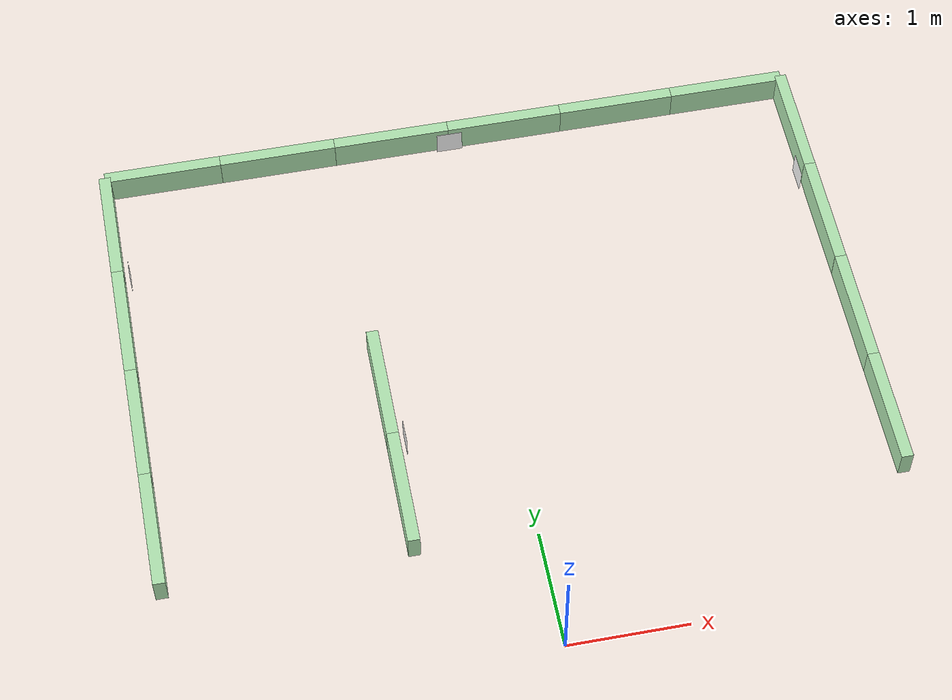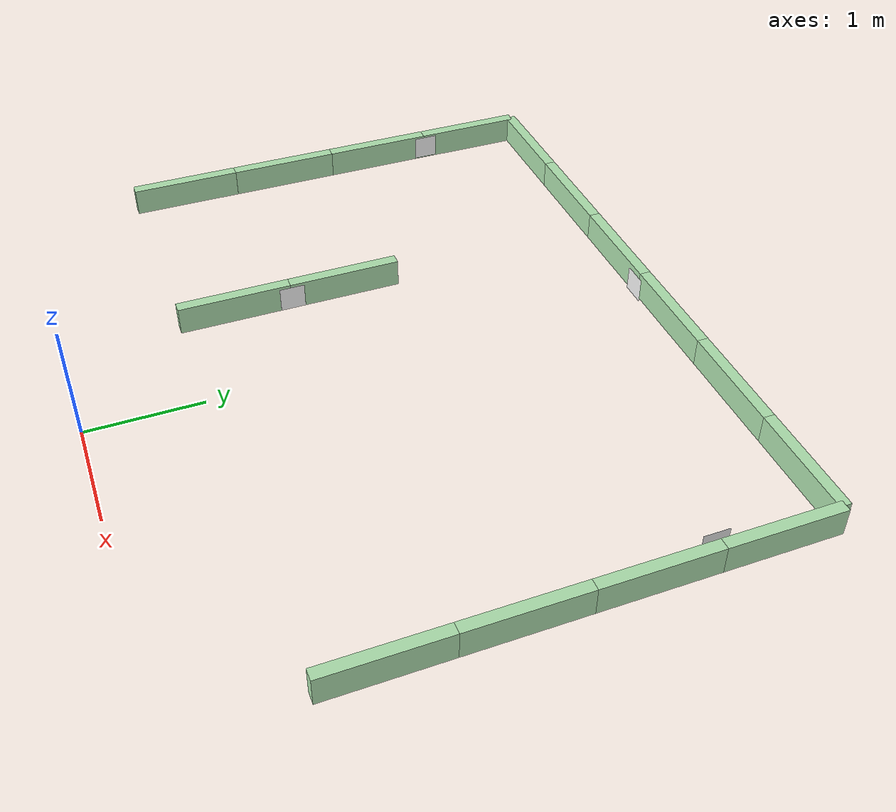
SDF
<sdf version="1.6">
 <world name="default">
  <model name="wall_100_25h_1_clone_9_clone_clone_8">
   <link name="link">
    <inertial>
     <mass>1</mass>
     <inertia>
      <ixx>0.166667</ixx>
      <ixy>0</ixy>
      <ixz>0</ixz>
      <iyy>0.166667</iyy>
      <iyz>0</iyz>
      <izz>0.166667</izz>
     </inertia>
    </inertial>
    <visual name="visual">
     <geometry><box><size>1 0.1 0.25</size></box></geometry>
     <material>
      <script><name>Gazebo/Grey</name><uri>file://media/materials/scripts/gazebo.material</uri></script>
      <ambient>0.3 0.5 0.3 1</ambient>
      <diffuse>0.7 0.9 0.7 1</diffuse>
      <specular>0.01 0.02 0.01 1</specular>
      <emissive>0 0 0 1</emissive>
      <lighting>1</lighting>
      <shader type="vertex"><normal_map>__default__</normal_map></shader>
     </material>
    </visual>
    <collision name="collision">
     <geometry><box><size>1 0.1 0.25</size></box></geometry>
     <surface>
      <friction>
       <ode><mu>1</mu><mu2>1</mu2><fdir1>0 0 0</fdir1><slip1>0</slip1><slip2>0</slip2></ode>
       <torsional>
        <coefficient>1</coefficient>
        <patch_radius>0</patch_radius>
        <surface_radius>0</surface_radius>
        <use_patch_radius>1</use_patch_radius>
        <ode><slip>0</slip></ode>
       </torsional>
      </friction>
      <bounce><restitution_coefficient>0</restitution_coefficient><threshold>1e+06</threshold></bounce>
      <contact>
       <collide_without_contact>0</collide_without_contact>
       <collide_without_contact_bitmask>1</collide_without_contact_bitmask>
       <collide_bitmask>1</collide_bitmask>
       <ode>
        <soft_cfm>0</soft_cfm>
        <soft_erp>0.2</soft_erp>
        <kp>1e+13</kp>
        <kd>1</kd>
        <max_vel>0.01</max_vel>
        <min_depth>0</min_depth>
       </ode>
       <bullet>
        <split_impulse>1</split_impulse>
        <split_impulse_penetration_threshold>-0.01</split_impulse_penetration_threshold>
        <soft_cfm>0</soft_cfm>
        <soft_erp>0.2</soft_erp>
        <kp>1e+13</kp>
        <kd>1</kd>
       </bullet>
      </contact>
     </surface>
    </collision>
   </link>
   <static>1</static>
   <pose>-1 1.5 0.125 0 0.000404 -1.57111</pose>
  </model>
  <model name="wall_100_25h_1_clone_9_clone_clone_9">
   <link name="link">
    <inertial>
     <mass>1</mass>
     <inertia>
      <ixx>0.166667</ixx>
      <ixy>0</ixy>
      <ixz>0</ixz>
      <iyy>0.166667</iyy>
      <iyz>0</iyz>
      <izz>0.166667</izz>
     </inertia>
    </inertial>
    <visual name="visual">
     <geometry><box><size>1 0.1 0.25</size></box></geometry>
     <material>
      <script><name>Gazebo/Grey</name><uri>file://media/materials/scripts/gazebo.material</uri></script>
      <ambient>0.3 0.5 0.3 1</ambient>
      <diffuse>0.7 0.9 0.7 1</diffuse>
      <specular>0.01 0.02 0.01 1</specular>
      <emissive>0 0 0 1</emissive>
      <lighting>1</lighting>
      <shader type="vertex"><normal_map>__default__</normal_map></shader>
     </material>
    </visual>
    <collision name="collision">
     <geometry><box><size>1 0.1 0.25</size></box></geometry>
     <surface>
      <friction>
       <ode><mu>1</mu><mu2>1</mu2><fdir1>0 0 0</fdir1><slip1>0</slip1><slip2>0</slip2></ode>
       <torsional>
        <coefficient>1</coefficient>
        <patch_radius>0</patch_radius>
        <surface_radius>0</surface_radius>
        <use_patch_radius>1</use_patch_radius>
        <ode><slip>0</slip></ode>
       </torsional>
      </friction>
      <bounce><restitution_coefficient>0</restitution_coefficient><threshold>1e+06</threshold></bounce>
      <contact>
       <collide_without_contact>0</collide_without_contact>
       <collide_without_contact_bitmask>1</collide_without_contact_bitmask>
       <collide_bitmask>1</collide_bitmask>
       <ode>
        <soft_cfm>0</soft_cfm>
        <soft_erp>0.2</soft_erp>
        <kp>1e+13</kp>
        <kd>1</kd>
        <max_vel>0.01</max_vel>
        <min_depth>0</min_depth>
       </ode>
       <bullet>
        <split_impulse>1</split_impulse>
        <split_impulse_penetration_threshold>-0.01</split_impulse_penetration_threshold>
        <soft_cfm>0</soft_cfm>
        <soft_erp>0.2</soft_erp>
        <kp>1e+13</kp>
        <kd>1</kd>
       </bullet>
      </contact>
     </surface>
    </collision>
   </link>
   <static>1</static>
   <pose>-1 2.5 0.125 0 0.000404 -1.57111</pose>
  </model>
  <model name="wall_100_25h_1_clone_9_clone_clone_12">
   <link name="link">
    <inertial>
     <mass>1</mass>
     <inertia>
      <ixx>0.166667</ixx>
      <ixy>0</ixy>
      <ixz>0</ixz>
      <iyy>0.166667</iyy>
      <iyz>0</iyz>
      <izz>0.166667</izz>
     </inertia>
    </inertial>
    <visual name="visual">
     <geometry><box><size>1 0.1 0.25</size></box></geometry>
     <material>
      <script><name>Gazebo/Grey</name><uri>file://media/materials/scripts/gazebo.material</uri></script>
      <ambient>0.3 0.5 0.3 1</ambient>
      <diffuse>0.7 0.9 0.7 1</diffuse>
      <specular>0.01 0.02 0.01 1</specular>
      <emissive>0 0 0 1</emissive>
      <lighting>1</lighting>
      <shader type="vertex"><normal_map>__default__</normal_map></shader>
     </material>
    </visual>
    <collision name="collision">
     <geometry><box><size>1 0.1 0.25</size></box></geometry>
     <surface>
      <friction>
       <ode><mu>1</mu><mu2>1</mu2><fdir1>0 0 0</fdir1><slip1>0</slip1><slip2>0</slip2></ode>
       <torsional>
        <coefficient>1</coefficient>
        <patch_radius>0</patch_radius>
        <surface_radius>0</surface_radius>
        <use_patch_radius>1</use_patch_radius>
        <ode><slip>0</slip></ode>
       </torsional>
      </friction>
      <bounce><restitution_coefficient>0</restitution_coefficient><threshold>1e+06</threshold></bounce>
      <contact>
       <collide_without_contact>0</collide_without_contact>
       <collide_without_contact_bitmask>1</collide_without_contact_bitmask>
       <collide_bitmask>1</collide_bitmask>
       <ode>
        <soft_cfm>0</soft_cfm>
        <soft_erp>0.2</soft_erp>
        <kp>1e+13</kp>
        <kd>1</kd>
        <max_vel>0.01</max_vel>
        <min_depth>0</min_depth>
       </ode>
       <bullet>
        <split_impulse>1</split_impulse>
        <split_impulse_penetration_threshold>-0.01</split_impulse_penetration_threshold>
        <soft_cfm>0</soft_cfm>
        <soft_erp>0.2</soft_erp>
        <kp>1e+13</kp>
        <kd>1</kd>
       </bullet>
      </contact>
     </surface>
    </collision>
   </link>
   <static>1</static>
   <pose>-3 1.5 0.125 0 0.000404 -1.57111</pose>
  </model>
  <model name="wall_100_25h_1_clone_9_clone_clone_13">
   <link name="link">
    <inertial>
     <mass>1</mass>
     <inertia>
      <ixx>0.166667</ixx>
      <ixy>0</ixy>
      <ixz>0</ixz>
      <iyy>0.166667</iyy>
      <iyz>0</iyz>
      <izz>0.166667</izz>
     </inertia>
    </inertial>
    <visual name="visual">
     <geometry><box><size>1 0.1 0.25</size></box></geometry>
     <material>
      <script><name>Gazebo/Grey</name><uri>file://media/materials/scripts/gazebo.material</uri></script>
      <ambient>0.3 0.5 0.3 1</ambient>
      <diffuse>0.7 0.9 0.7 1</diffuse>
      <specular>0.01 0.02 0.01 1</specular>
      <emissive>0 0 0 1</emissive>
      <lighting>1</lighting>
      <shader type="vertex"><normal_map>__default__</normal_map></shader>
     </material>
    </visual>
    <collision name="collision">
     <geometry><box><size>1 0.1 0.25</size></box></geometry>
     <surface>
      <friction>
       <ode><mu>1</mu><mu2>1</mu2><fdir1>0 0 0</fdir1><slip1>0</slip1><slip2>0</slip2></ode>
       <torsional>
        <coefficient>1</coefficient>
        <patch_radius>0</patch_radius>
        <surface_radius>0</surface_radius>
        <use_patch_radius>1</use_patch_radius>
        <ode><slip>0</slip></ode>
       </torsional>
      </friction>
      <bounce><restitution_coefficient>0</restitution_coefficient><threshold>1e+06</threshold></bounce>
      <contact>
       <collide_without_contact>0</collide_without_contact>
       <collide_without_contact_bitmask>1</collide_without_contact_bitmask>
       <collide_bitmask>1</collide_bitmask>
       <ode>
        <soft_cfm>0</soft_cfm>
        <soft_erp>0.2</soft_erp>
        <kp>1e+13</kp>
        <kd>1</kd>
        <max_vel>0.01</max_vel>
        <min_depth>0</min_depth>
       </ode>
       <bullet>
        <split_impulse>1</split_impulse>
        <split_impulse_penetration_threshold>-0.01</split_impulse_penetration_threshold>
        <soft_cfm>0</soft_cfm>
        <soft_erp>0.2</soft_erp>
        <kp>1e+13</kp>
        <kd>1</kd>
       </bullet>
      </contact>
     </surface>
    </collision>
   </link>
   <static>1</static>
   <pose>-3 2.5 0.125 0 0.000404 -1.57111</pose>
  </model>
  <model name="wall_100_25h_1_clone_9_clone_clone_14">
   <link name="link">
    <inertial>
     <mass>1</mass>
     <inertia>
      <ixx>0.166667</ixx>
      <ixy>0</ixy>
      <ixz>0</ixz>
      <iyy>0.166667</iyy>
      <iyz>0</iyz>
      <izz>0.166667</izz>
     </inertia>
    </inertial>
    <visual name="visual">
     <geometry><box><size>1 0.1 0.25</size></box></geometry>
     <material>
      <script><name>Gazebo/Grey</name><uri>file://media/materials/scripts/gazebo.material</uri></script>
      <ambient>0.3 0.5 0.3 1</ambient>
      <diffuse>0.7 0.9 0.7 1</diffuse>
      <specular>0.01 0.02 0.01 1</specular>
      <emissive>0 0 0 1</emissive>
      <lighting>1</lighting>
      <shader type="vertex"><normal_map>__default__</normal_map></shader>
     </material>
    </visual>
    <collision name="collision">
     <geometry><box><size>1 0.1 0.25</size></box></geometry>
     <surface>
      <friction>
       <ode><mu>1</mu><mu2>1</mu2><fdir1>0 0 0</fdir1><slip1>0</slip1><slip2>0</slip2></ode>
       <torsional>
        <coefficient>1</coefficient>
        <patch_radius>0</patch_radius>
        <surface_radius>0</surface_radius>
        <use_patch_radius>1</use_patch_radius>
        <ode><slip>0</slip></ode>
       </torsional>
      </friction>
      <bounce><restitution_coefficient>0</restitution_coefficient><threshold>1e+06</threshold></bounce>
      <contact>
       <collide_without_contact>0</collide_without_contact>
       <collide_without_contact_bitmask>1</collide_without_contact_bitmask>
       <collide_bitmask>1</collide_bitmask>
       <ode>
        <soft_cfm>0</soft_cfm>
        <soft_erp>0.2</soft_erp>
        <kp>1e+13</kp>
        <kd>1</kd>
        <max_vel>0.01</max_vel>
        <min_depth>0</min_depth>
       </ode>
       <bullet>
        <split_impulse>1</split_impulse>
        <split_impulse_penetration_threshold>-0.01</split_impulse_penetration_threshold>
        <soft_cfm>0</soft_cfm>
        <soft_erp>0.2</soft_erp>
        <kp>1e+13</kp>
        <kd>1</kd>
       </bullet>
      </contact>
     </surface>
    </collision>
   </link>
   <static>1</static>
   <pose>3 1.5 0.125 0 0.000404 -1.57111</pose>
  </model>
  <model name="wall_100_25h_1_clone_9_clone_clone_15">
   <link name="link">
    <inertial>
     <mass>1</mass>
     <inertia>
      <ixx>0.166667</ixx>
      <ixy>0</ixy>
      <ixz>0</ixz>
      <iyy>0.166667</iyy>
      <iyz>0</iyz>
      <izz>0.166667</izz>
     </inertia>
    </inertial>
    <visual name="visual">
     <geometry><box><size>1 0.1 0.25</size></box></geometry>
     <material>
      <script><name>Gazebo/Grey</name><uri>file://media/materials/scripts/gazebo.material</uri></script>
      <ambient>0.3 0.5 0.3 1</ambient>
      <diffuse>0.7 0.9 0.7 1</diffuse>
      <specular>0.01 0.02 0.01 1</specular>
      <emissive>0 0 0 1</emissive>
      <lighting>1</lighting>
      <shader type="vertex"><normal_map>__default__</normal_map></shader>
     </material>
    </visual>
    <collision name="collision">
     <geometry><box><size>1 0.1 0.25</size></box></geometry>
     <surface>
      <friction>
       <ode><mu>1</mu><mu2>1</mu2><fdir1>0 0 0</fdir1><slip1>0</slip1><slip2>0</slip2></ode>
       <torsional>
        <coefficient>1</coefficient>
        <patch_radius>0</patch_radius>
        <surface_radius>0</surface_radius>
        <use_patch_radius>1</use_patch_radius>
        <ode><slip>0</slip></ode>
       </torsional>
      </friction>
      <bounce><restitution_coefficient>0</restitution_coefficient><threshold>1e+06</threshold></bounce>
      <contact>
       <collide_without_contact>0</collide_without_contact>
       <collide_without_contact_bitmask>1</collide_without_contact_bitmask>
       <collide_bitmask>1</collide_bitmask>
       <ode>
        <soft_cfm>0</soft_cfm>
        <soft_erp>0.2</soft_erp>
        <kp>1e+13</kp>
        <kd>1</kd>
        <max_vel>0.01</max_vel>
        <min_depth>0</min_depth>
       </ode>
       <bullet>
        <split_impulse>1</split_impulse>
        <split_impulse_penetration_threshold>-0.01</split_impulse_penetration_threshold>
        <soft_cfm>0</soft_cfm>
        <soft_erp>0.2</soft_erp>
        <kp>1e+13</kp>
        <kd>1</kd>
       </bullet>
      </contact>
     </surface>
    </collision>
   </link>
   <static>1</static>
   <pose>3 2.5 0.125 0 0.000404 -1.57111</pose>
  </model>
  <model name="wall_100_25h_1_clone_9_clone_clone_16">
   <link name="link">
    <inertial>
     <mass>1</mass>
     <inertia>
      <ixx>0.166667</ixx>
      <ixy>0</ixy>
      <ixz>0</ixz>
      <iyy>0.166667</iyy>
      <iyz>0</iyz>
      <izz>0.166667</izz>
     </inertia>
    </inertial>
    <visual name="visual">
     <geometry><box><size>1 0.1 0.25</size></box></geometry>
     <material>
      <script><name>Gazebo/Grey</name><uri>file://media/materials/scripts/gazebo.material</uri></script>
      <ambient>0.3 0.5 0.3 1</ambient>
      <diffuse>0.7 0.9 0.7 1</diffuse>
      <specular>0.01 0.02 0.01 1</specular>
      <emissive>0 0 0 1</emissive>
      <lighting>1</lighting>
      <shader type="vertex"><normal_map>__default__</normal_map></shader>
     </material>
    </visual>
    <collision name="collision">
     <geometry><box><size>1 0.1 0.25</size></box></geometry>
     <surface>
      <friction>
       <ode><mu>1</mu><mu2>1</mu2><fdir1>0 0 0</fdir1><slip1>0</slip1><slip2>0</slip2></ode>
       <torsional>
        <coefficient>1</coefficient>
        <patch_radius>0</patch_radius>
        <surface_radius>0</surface_radius>
        <use_patch_radius>1</use_patch_radius>
        <ode><slip>0</slip></ode>
       </torsional>
      </friction>
      <bounce><restitution_coefficient>0</restitution_coefficient><threshold>1e+06</threshold></bounce>
      <contact>
       <collide_without_contact>0</collide_without_contact>
       <collide_without_contact_bitmask>1</collide_without_contact_bitmask>
       <collide_bitmask>1</collide_bitmask>
       <ode>
        <soft_cfm>0</soft_cfm>
        <soft_erp>0.2</soft_erp>
        <kp>1e+13</kp>
        <kd>1</kd>
        <max_vel>0.01</max_vel>
        <min_depth>0</min_depth>
       </ode>
       <bullet>
        <split_impulse>1</split_impulse>
        <split_impulse_penetration_threshold>-0.01</split_impulse_penetration_threshold>
        <soft_cfm>0</soft_cfm>
        <soft_erp>0.2</soft_erp>
        <kp>1e+13</kp>
        <kd>1</kd>
       </bullet>
      </contact>
     </surface>
    </collision>
   </link>
   <static>1</static>
   <pose>3 3.5 0.125 0 0.000404 -1.57111</pose>
  </model>
  <model name="wall_100_25h_1_clone_9_clone_clone_17">
   <link name="link">
    <inertial>
     <mass>1</mass>
     <inertia>
      <ixx>0.166667</ixx>
      <ixy>0</ixy>
      <ixz>0</ixz>
      <iyy>0.166667</iyy>
      <iyz>0</iyz>
      <izz>0.166667</izz>
     </inertia>
    </inertial>
    <visual name="visual">
     <geometry><box><size>1 0.1 0.25</size></box></geometry>
     <material>
      <script><name>Gazebo/Grey</name><uri>file://media/materials/scripts/gazebo.material</uri></script>
      <ambient>0.3 0.5 0.3 1</ambient>
      <diffuse>0.7 0.9 0.7 1</diffuse>
      <specular>0.01 0.02 0.01 1</specular>
      <emissive>0 0 0 1</emissive>
      <lighting>1</lighting>
      <shader type="vertex"><normal_map>__default__</normal_map></shader>
     </material>
    </visual>
    <collision name="collision">
     <geometry><box><size>1 0.1 0.25</size></box></geometry>
     <surface>
      <friction>
       <ode><mu>1</mu><mu2>1</mu2><fdir1>0 0 0</fdir1><slip1>0</slip1><slip2>0</slip2></ode>
       <torsional>
        <coefficient>1</coefficient>
        <patch_radius>0</patch_radius>
        <surface_radius>0</surface_radius>
        <use_patch_radius>1</use_patch_radius>
        <ode><slip>0</slip></ode>
       </torsional>
      </friction>
      <bounce><restitution_coefficient>0</restitution_coefficient><threshold>1e+06</threshold></bounce>
      <contact>
       <collide_without_contact>0</collide_without_contact>
       <collide_without_contact_bitmask>1</collide_without_contact_bitmask>
       <collide_bitmask>1</collide_bitmask>
       <ode>
        <soft_cfm>0</soft_cfm>
        <soft_erp>0.2</soft_erp>
        <kp>1e+13</kp>
        <kd>1</kd>
        <max_vel>0.01</max_vel>
        <min_depth>0</min_depth>
       </ode>
       <bullet>
        <split_impulse>1</split_impulse>
        <split_impulse_penetration_threshold>-0.01</split_impulse_penetration_threshold>
        <soft_cfm>0</soft_cfm>
        <soft_erp>0.2</soft_erp>
        <kp>1e+13</kp>
        <kd>1</kd>
       </bullet>
      </contact>
     </surface>
    </collision>
   </link>
   <static>1</static>
   <pose>3 4.5 0.125 0 0.000404 -1.57111</pose>
  </model>
  <model name="wall_100_25h_1_clone_7_clone">
   <link name="link">
    <inertial>
     <mass>1</mass>
     <inertia>
      <ixx>0.166667</ixx>
      <ixy>0</ixy>
      <ixz>0</ixz>
      <iyy>0.166667</iyy>
      <iyz>0</iyz>
      <izz>0.166667</izz>
     </inertia>
    </inertial>
    <visual name="visual">
     <geometry><box><size>1 0.1 0.25</size></box></geometry>
     <material>
      <script><name>Gazebo/Grey</name><uri>file://media/materials/scripts/gazebo.material</uri></script>
      <ambient>0.3 0.5 0.3 1</ambient>
      <diffuse>0.7 0.9 0.7 1</diffuse>
      <specular>0.01 0.02 0.01 1</specular>
      <emissive>0 0 0 1</emissive>
      <lighting>1</lighting>
      <shader type="vertex"><normal_map>__default__</normal_map></shader>
     </material>
    </visual>
    <collision name="collision">
     <geometry><box><size>1 0.1 0.25</size></box></geometry>
     <surface>
      <friction>
       <ode><mu>1</mu><mu2>1</mu2><fdir1>0 0 0</fdir1><slip1>0</slip1><slip2>0</slip2></ode>
       <torsional>
        <coefficient>1</coefficient>
        <patch_radius>0</patch_radius>
        <surface_radius>0</surface_radius>
        <use_patch_radius>1</use_patch_radius>
        <ode><slip>0</slip></ode>
       </torsional>
      </friction>
      <bounce><restitution_coefficient>0</restitution_coefficient><threshold>1e+06</threshold></bounce>
      <contact>
       <collide_without_contact>0</collide_without_contact>
       <collide_without_contact_bitmask>1</collide_without_contact_bitmask>
       <collide_bitmask>1</collide_bitmask>
       <ode>
        <soft_cfm>0</soft_cfm>
        <soft_erp>0.2</soft_erp>
        <kp>1e+13</kp>
        <kd>1</kd>
        <max_vel>0.01</max_vel>
        <min_depth>0</min_depth>
       </ode>
       <bullet>
        <split_impulse>1</split_impulse>
        <split_impulse_penetration_threshold>-0.01</split_impulse_penetration_threshold>
        <soft_cfm>0</soft_cfm>
        <soft_erp>0.2</soft_erp>
        <kp>1e+13</kp>
        <kd>1</kd>
       </bullet>
      </contact>
     </surface>
    </collision>
   </link>
   <static>1</static>
   <pose>2.5 5 0.125 0.000404 -0 0</pose>
  </model>
  <model name="wall_100_25h_1_clone_7_clone_0">
   <link name="link">
    <inertial>
     <mass>1</mass>
     <inertia>
      <ixx>0.166667</ixx>
      <ixy>0</ixy>
      <ixz>0</ixz>
      <iyy>0.166667</iyy>
      <iyz>0</iyz>
      <izz>0.166667</izz>
     </inertia>
    </inertial>
    <visual name="visual">
     <geometry><box><size>1 0.1 0.25</size></box></geometry>
     <material>
      <script><name>Gazebo/Grey</name><uri>file://media/materials/scripts/gazebo.material</uri></script>
      <ambient>0.3 0.5 0.3 1</ambient>
      <diffuse>0.7 0.9 0.7 1</diffuse>
      <specular>0.01 0.02 0.01 1</specular>
      <emissive>0 0 0 1</emissive>
      <lighting>1</lighting>
      <shader type="vertex"><normal_map>__default__</normal_map></shader>
     </material>
    </visual>
    <collision name="collision">
     <geometry><box><size>1 0.1 0.25</size></box></geometry>
     <surface>
      <friction>
       <ode><mu>1</mu><mu2>1</mu2><fdir1>0 0 0</fdir1><slip1>0</slip1><slip2>0</slip2></ode>
       <torsional>
        <coefficient>1</coefficient>
        <patch_radius>0</patch_radius>
        <surface_radius>0</surface_radius>
        <use_patch_radius>1</use_patch_radius>
        <ode><slip>0</slip></ode>
       </torsional>
      </friction>
      <bounce><restitution_coefficient>0</restitution_coefficient><threshold>1e+06</threshold></bounce>
      <contact>
       <collide_without_contact>0</collide_without_contact>
       <collide_without_contact_bitmask>1</collide_without_contact_bitmask>
       <collide_bitmask>1</collide_bitmask>
       <ode>
        <soft_cfm>0</soft_cfm>
        <soft_erp>0.2</soft_erp>
        <kp>1e+13</kp>
        <kd>1</kd>
        <max_vel>0.01</max_vel>
        <min_depth>0</min_depth>
       </ode>
       <bullet>
        <split_impulse>1</split_impulse>
        <split_impulse_penetration_threshold>-0.01</split_impulse_penetration_threshold>
        <soft_cfm>0</soft_cfm>
        <soft_erp>0.2</soft_erp>
        <kp>1e+13</kp>
        <kd>1</kd>
       </bullet>
      </contact>
     </surface>
    </collision>
   </link>
   <static>1</static>
   <pose>1.5 5 0.125 0.000404 -0 0</pose>
  </model>
  <model name="wall_100_25h_1_clone_7_clone_1">
   <link name="link">
    <inertial>
     <mass>1</mass>
     <inertia>
      <ixx>0.166667</ixx>
      <ixy>0</ixy>
      <ixz>0</ixz>
      <iyy>0.166667</iyy>
      <iyz>0</iyz>
      <izz>0.166667</izz>
     </inertia>
    </inertial>
    <visual name="visual">
     <geometry><box><size>1 0.1 0.25</size></box></geometry>
     <material>
      <script><name>Gazebo/Grey</name><uri>file://media/materials/scripts/gazebo.material</uri></script>
      <ambient>0.3 0.5 0.3 1</ambient>
      <diffuse>0.7 0.9 0.7 1</diffuse>
      <specular>0.01 0.02 0.01 1</specular>
      <emissive>0 0 0 1</emissive>
      <lighting>1</lighting>
      <shader type="vertex"><normal_map>__default__</normal_map></shader>
     </material>
    </visual>
    <collision name="collision">
     <geometry><box><size>1 0.1 0.25</size></box></geometry>
     <surface>
      <friction>
       <ode><mu>1</mu><mu2>1</mu2><fdir1>0 0 0</fdir1><slip1>0</slip1><slip2>0</slip2></ode>
       <torsional>
        <coefficient>1</coefficient>
        <patch_radius>0</patch_radius>
        <surface_radius>0</surface_radius>
        <use_patch_radius>1</use_patch_radius>
        <ode><slip>0</slip></ode>
       </torsional>
      </friction>
      <bounce><restitution_coefficient>0</restitution_coefficient><threshold>1e+06</threshold></bounce>
      <contact>
       <collide_without_contact>0</collide_without_contact>
       <collide_without_contact_bitmask>1</collide_without_contact_bitmask>
       <collide_bitmask>1</collide_bitmask>
       <ode>
        <soft_cfm>0</soft_cfm>
        <soft_erp>0.2</soft_erp>
        <kp>1e+13</kp>
        <kd>1</kd>
        <max_vel>0.01</max_vel>
        <min_depth>0</min_depth>
       </ode>
       <bullet>
        <split_impulse>1</split_impulse>
        <split_impulse_penetration_threshold>-0.01</split_impulse_penetration_threshold>
        <soft_cfm>0</soft_cfm>
        <soft_erp>0.2</soft_erp>
        <kp>1e+13</kp>
        <kd>1</kd>
       </bullet>
      </contact>
     </surface>
    </collision>
   </link>
   <static>1</static>
   <pose>0.5 5 0.125 0.000404 -0 0</pose>
  </model>
  <model name="wall_100_25h_1_clone_7_clone_2">
   <link name="link">
    <inertial>
     <mass>1</mass>
     <inertia>
      <ixx>0.166667</ixx>
      <ixy>0</ixy>
      <ixz>0</ixz>
      <iyy>0.166667</iyy>
      <iyz>0</iyz>
      <izz>0.166667</izz>
     </inertia>
    </inertial>
    <visual name="visual">
     <geometry><box><size>1 0.1 0.25</size></box></geometry>
     <material>
      <script><name>Gazebo/Grey</name><uri>file://media/materials/scripts/gazebo.material</uri></script>
      <ambient>0.3 0.5 0.3 1</ambient>
      <diffuse>0.7 0.9 0.7 1</diffuse>
      <specular>0.01 0.02 0.01 1</specular>
      <emissive>0 0 0 1</emissive>
      <lighting>1</lighting>
      <shader type="vertex"><normal_map>__default__</normal_map></shader>
     </material>
    </visual>
    <collision name="collision">
     <geometry><box><size>1 0.1 0.25</size></box></geometry>
     <surface>
      <friction>
       <ode><mu>1</mu><mu2>1</mu2><fdir1>0 0 0</fdir1><slip1>0</slip1><slip2>0</slip2></ode>
       <torsional>
        <coefficient>1</coefficient>
        <patch_radius>0</patch_radius>
        <surface_radius>0</surface_radius>
        <use_patch_radius>1</use_patch_radius>
        <ode><slip>0</slip></ode>
       </torsional>
      </friction>
      <bounce><restitution_coefficient>0</restitution_coefficient><threshold>1e+06</threshold></bounce>
      <contact>
       <collide_without_contact>0</collide_without_contact>
       <collide_without_contact_bitmask>1</collide_without_contact_bitmask>
       <collide_bitmask>1</collide_bitmask>
       <ode>
        <soft_cfm>0</soft_cfm>
        <soft_erp>0.2</soft_erp>
        <kp>1e+13</kp>
        <kd>1</kd>
        <max_vel>0.01</max_vel>
        <min_depth>0</min_depth>
       </ode>
       <bullet>
        <split_impulse>1</split_impulse>
        <split_impulse_penetration_threshold>-0.01</split_impulse_penetration_threshold>
        <soft_cfm>0</soft_cfm>
        <soft_erp>0.2</soft_erp>
        <kp>1e+13</kp>
        <kd>1</kd>
       </bullet>
      </contact>
     </surface>
    </collision>
   </link>
   <static>1</static>
   <pose>-0.5 5 0.125 0.000404 -0 0</pose>
  </model>
  <model name="wall_100_25h_1_clone_7_clone_3">
   <link name="link">
    <inertial>
     <mass>1</mass>
     <inertia>
      <ixx>0.166667</ixx>
      <ixy>0</ixy>
      <ixz>0</ixz>
      <iyy>0.166667</iyy>
      <iyz>0</iyz>
      <izz>0.166667</izz>
     </inertia>
    </inertial>
    <visual name="visual">
     <geometry><box><size>1 0.1 0.25</size></box></geometry>
     <material>
      <script><name>Gazebo/Grey</name><uri>file://media/materials/scripts/gazebo.material</uri></script>
      <ambient>0.3 0.5 0.3 1</ambient>
      <diffuse>0.7 0.9 0.7 1</diffuse>
      <specular>0.01 0.02 0.01 1</specular>
      <emissive>0 0 0 1</emissive>
      <lighting>1</lighting>
      <shader type="vertex"><normal_map>__default__</normal_map></shader>
     </material>
    </visual>
    <collision name="collision">
     <geometry><box><size>1 0.1 0.25</size></box></geometry>
     <surface>
      <friction>
       <ode><mu>1</mu><mu2>1</mu2><fdir1>0 0 0</fdir1><slip1>0</slip1><slip2>0</slip2></ode>
       <torsional>
        <coefficient>1</coefficient>
        <patch_radius>0</patch_radius>
        <surface_radius>0</surface_radius>
        <use_patch_radius>1</use_patch_radius>
        <ode><slip>0</slip></ode>
       </torsional>
      </friction>
      <bounce><restitution_coefficient>0</restitution_coefficient><threshold>1e+06</threshold></bounce>
      <contact>
       <collide_without_contact>0</collide_without_contact>
       <collide_without_contact_bitmask>1</collide_without_contact_bitmask>
       <collide_bitmask>1</collide_bitmask>
       <ode>
        <soft_cfm>0</soft_cfm>
        <soft_erp>0.2</soft_erp>
        <kp>1e+13</kp>
        <kd>1</kd>
        <max_vel>0.01</max_vel>
        <min_depth>0</min_depth>
       </ode>
       <bullet>
        <split_impulse>1</split_impulse>
        <split_impulse_penetration_threshold>-0.01</split_impulse_penetration_threshold>
        <soft_cfm>0</soft_cfm>
        <soft_erp>0.2</soft_erp>
        <kp>1e+13</kp>
        <kd>1</kd>
       </bullet>
      </contact>
     </surface>
    </collision>
   </link>
   <static>1</static>
   <pose>-1.5 5 0.125 0.000404 -0 0</pose>
  </model>
  <model name="wall_100_25h_1_clone_7_clone_4">
   <link name="link">
    <inertial>
     <mass>1</mass>
     <inertia>
      <ixx>0.166667</ixx>
      <ixy>0</ixy>
      <ixz>0</ixz>
      <iyy>0.166667</iyy>
      <iyz>0</iyz>
      <izz>0.166667</izz>
     </inertia>
    </inertial>
    <visual name="visual">
     <geometry><box><size>1 0.1 0.25</size></box></geometry>
     <material>
      <script><name>Gazebo/Grey</name><uri>file://media/materials/scripts/gazebo.material</uri></script>
      <ambient>0.3 0.5 0.3 1</ambient>
      <diffuse>0.7 0.9 0.7 1</diffuse>
      <specular>0.01 0.02 0.01 1</specular>
      <emissive>0 0 0 1</emissive>
      <lighting>1</lighting>
      <shader type="vertex"><normal_map>__default__</normal_map></shader>
     </material>
    </visual>
    <collision name="collision">
     <geometry><box><size>1 0.1 0.25</size></box></geometry>
     <surface>
      <friction>
       <ode><mu>1</mu><mu2>1</mu2><fdir1>0 0 0</fdir1><slip1>0</slip1><slip2>0</slip2></ode>
       <torsional>
        <coefficient>1</coefficient>
        <patch_radius>0</patch_radius>
        <surface_radius>0</surface_radius>
        <use_patch_radius>1</use_patch_radius>
        <ode><slip>0</slip></ode>
       </torsional>
      </friction>
      <bounce><restitution_coefficient>0</restitution_coefficient><threshold>1e+06</threshold></bounce>
      <contact>
       <collide_without_contact>0</collide_without_contact>
       <collide_without_contact_bitmask>1</collide_without_contact_bitmask>
       <collide_bitmask>1</collide_bitmask>
       <ode>
        <soft_cfm>0</soft_cfm>
        <soft_erp>0.2</soft_erp>
        <kp>1e+13</kp>
        <kd>1</kd>
        <max_vel>0.01</max_vel>
        <min_depth>0</min_depth>
       </ode>
       <bullet>
        <split_impulse>1</split_impulse>
        <split_impulse_penetration_threshold>-0.01</split_impulse_penetration_threshold>
        <soft_cfm>0</soft_cfm>
        <soft_erp>0.2</soft_erp>
        <kp>1e+13</kp>
        <kd>1</kd>
       </bullet>
      </contact>
     </surface>
    </collision>
   </link>
   <static>1</static>
   <pose>-2.5 5 0.125 0.000404 -0 0</pose>
  </model>
  <model name="wall_100_25h_1_clone_9_clone_clone_13_clone">
   <link name="link">
    <inertial>
     <mass>1</mass>
     <inertia>
      <ixx>0.166667</ixx>
      <ixy>0</ixy>
      <ixz>0</ixz>
      <iyy>0.166667</iyy>
      <iyz>0</iyz>
      <izz>0.166667</izz>
     </inertia>
    </inertial>
    <visual name="visual">
     <geometry><box><size>1 0.1 0.25</size></box></geometry>
     <material>
      <script><name>Gazebo/Grey</name><uri>file://media/materials/scripts/gazebo.material</uri></script>
      <ambient>0.3 0.5 0.3 1</ambient>
      <diffuse>0.7 0.9 0.7 1</diffuse>
      <specular>0.01 0.02 0.01 1</specular>
      <emissive>0 0 0 1</emissive>
      <lighting>1</lighting>
      <shader type="vertex"><normal_map>__default__</normal_map></shader>
     </material>
    </visual>
    <collision name="collision">
     <geometry><box><size>1 0.1 0.25</size></box></geometry>
     <surface>
      <friction>
       <ode><mu>1</mu><mu2>1</mu2><fdir1>0 0 0</fdir1><slip1>0</slip1><slip2>0</slip2></ode>
       <torsional>
        <coefficient>1</coefficient>
        <patch_radius>0</patch_radius>
        <surface_radius>0</surface_radius>
        <use_patch_radius>1</use_patch_radius>
        <ode><slip>0</slip></ode>
       </torsional>
      </friction>
      <bounce><restitution_coefficient>0</restitution_coefficient><threshold>1e+06</threshold></bounce>
      <contact>
       <collide_without_contact>0</collide_without_contact>
       <collide_without_contact_bitmask>1</collide_without_contact_bitmask>
       <collide_bitmask>1</collide_bitmask>
       <ode>
        <soft_cfm>0</soft_cfm>
        <soft_erp>0.2</soft_erp>
        <kp>1e+13</kp>
        <kd>1</kd>
        <max_vel>0.01</max_vel>
        <min_depth>0</min_depth>
       </ode>
       <bullet>
        <split_impulse>1</split_impulse>
        <split_impulse_penetration_threshold>-0.01</split_impulse_penetration_threshold>
        <soft_cfm>0</soft_cfm>
        <soft_erp>0.2</soft_erp>
        <kp>1e+13</kp>
        <kd>1</kd>
       </bullet>
      </contact>
     </surface>
    </collision>
   </link>
   <static>1</static>
   <pose>-3 3.5 0.125 0 0.000404 -1.57111</pose>
  </model>
  <model name="wall_100_25h_1_clone_9_clone_clone_13_clone_0">
   <link name="link">
    <inertial>
     <mass>1</mass>
     <inertia>
      <ixx>0.166667</ixx>
      <ixy>0</ixy>
      <ixz>0</ixz>
      <iyy>0.166667</iyy>
      <iyz>0</iyz>
      <izz>0.166667</izz>
     </inertia>
    </inertial>
    <visual name="visual">
     <geometry><box><size>1 0.1 0.25</size></box></geometry>
     <material>
      <script><name>Gazebo/Grey</name><uri>file://media/materials/scripts/gazebo.material</uri></script>
      <ambient>0.3 0.5 0.3 1</ambient>
      <diffuse>0.7 0.9 0.7 1</diffuse>
      <specular>0.01 0.02 0.01 1</specular>
      <emissive>0 0 0 1</emissive>
      <lighting>1</lighting>
      <shader type="vertex"><normal_map>__default__</normal_map></shader>
     </material>
    </visual>
    <collision name="collision">
     <geometry><box><size>1 0.1 0.25</size></box></geometry>
     <surface>
      <friction>
       <ode><mu>1</mu><mu2>1</mu2><fdir1>0 0 0</fdir1><slip1>0</slip1><slip2>0</slip2></ode>
       <torsional>
        <coefficient>1</coefficient>
        <patch_radius>0</patch_radius>
        <surface_radius>0</surface_radius>
        <use_patch_radius>1</use_patch_radius>
        <ode><slip>0</slip></ode>
       </torsional>
      </friction>
      <bounce><restitution_coefficient>0</restitution_coefficient><threshold>1e+06</threshold></bounce>
      <contact>
       <collide_without_contact>0</collide_without_contact>
       <collide_without_contact_bitmask>1</collide_without_contact_bitmask>
       <collide_bitmask>1</collide_bitmask>
       <ode>
        <soft_cfm>0</soft_cfm>
        <soft_erp>0.2</soft_erp>
        <kp>1e+13</kp>
        <kd>1</kd>
        <max_vel>0.01</max_vel>
        <min_depth>0</min_depth>
       </ode>
       <bullet>
        <split_impulse>1</split_impulse>
        <split_impulse_penetration_threshold>-0.01</split_impulse_penetration_threshold>
        <soft_cfm>0</soft_cfm>
        <soft_erp>0.2</soft_erp>
        <kp>1e+13</kp>
        <kd>1</kd>
       </bullet>
      </contact>
     </surface>
    </collision>
   </link>
   <static>1</static>
   <pose>-3 4.5 0.125 0 0.000404 -1.57111</pose>
  </model>
  <model name="aiil_hazard_inhalationhazard">
   <link name="marker">
    <visual name="visual">
     <geometry><box><size>0.222 0.222 1e-05</size></box></geometry>
     <material>
      <script>
       <uri>model://aiil_hazard_inhalationhazard/materials/scripts</uri>
       <uri>model://aiil_hazard_inhalationhazard/materials/textures</uri>
       <name>AIILHazardinhalationhazard/Marker</name>
      </script>
      <ambient>1 1 1 1</ambient>
      <diffuse>1 1 1 1</diffuse>
      <specular>0 0 0 1</specular>
      <emissive>1 1 1 0</emissive>
      <shader type="vertex"><normal_map>__default__</normal_map></shader>
     </material>
    </visual>
    <collision name="collision"><geometry><box><size>0.222 0.222 1e-05</size></box></geometry></collision>
   </link>
   <link name="marker_pad">
    <pose frame="marker">0 0 -1e-05 0 -0 0</pose>
    <visual name="visual">
     <geometry><box><size>0.222 0.222 1e-05</size></box></geometry>
     <material>
      <lighting>1</lighting>
      <script><uri>file://media/materials/scripts/gazebo.material</uri><name>Gazebo/White</name></script>
      <ambient>0.3 0.3 0.3 1</ambient>
      <diffuse>0.7 0.7 0.7 1</diffuse>
      <specular>0.01 0.01 0.01 1</specular>
      <emissive>1 1 1 0</emissive>
      <shader type="vertex"><normal_map>__default__</normal_map></shader>
     </material>
    </visual>
    <collision name="collision"><geometry><box><size>0.222 0.222 1e-05</size></box></geometry></collision>
   </link>
   <joint name="marker_JOINT_marker_pad" type="revolute">
    <parent>marker</parent>
    <child>marker_pad</child>
    <axis>
     <xyz>0 0 1</xyz>
     <limit><upper>0</upper><lower>0</lower></limit>
     <use_parent_model_frame>0</use_parent_model_frame>
     <dynamics><spring_reference>0</spring_reference><spring_stiffness>0</spring_stiffness></dynamics>
    </axis>
   </joint>
   <static>1</static>
   <pose>-2.9 4 0.15 -1.57 -1.57 -1.57</pose>
  </model>
  <model name="aiil_hazard_nonflammablegas">
   <link name="marker">
    <visual name="visual">
     <geometry><box><size>0.222 0.222 1e-05</size></box></geometry>
     <material>
      <script>
       <uri>model://aiil_hazard_nonflammablegas/materials/scripts</uri>
       <uri>model://aiil_hazard_nonflammablegas/materials/textures</uri>
       <name>AIILHazardnonflammablegas/Marker</name>
      </script>
      <ambient>1 1 1 1</ambient>
      <diffuse>1 1 1 1</diffuse>
      <specular>0 0 0 1</specular>
      <emissive>1 1 1 0</emissive>
      <shader type="vertex"><normal_map>__default__</normal_map></shader>
     </material>
    </visual>
    <collision name="collision"><geometry><box><size>0.222 0.222 1e-05</size></box></geometry></collision>
   </link>
   <link name="marker_pad">
    <pose frame="marker">0 0 -1e-05 0 -0 0</pose>
    <visual name="visual">
     <geometry><box><size>0.222 0.222 1e-05</size></box></geometry>
     <material>
      <lighting>1</lighting>
      <script><uri>file://media/materials/scripts/gazebo.material</uri><name>Gazebo/White</name></script>
      <ambient>0.3 0.3 0.3 1</ambient>
      <diffuse>0.7 0.7 0.7 1</diffuse>
      <specular>0.01 0.01 0.01 1</specular>
      <emissive>1 1 1 0</emissive>
      <shader type="vertex"><normal_map>__default__</normal_map></shader>
     </material>
    </visual>
    <collision name="collision"><geometry><box><size>0.222 0.222 1e-05</size></box></geometry></collision>
   </link>
   <joint name="marker_JOINT_marker_pad" type="revolute">
    <parent>marker</parent>
    <child>marker_pad</child>
    <axis>
     <xyz>0 0 1</xyz>
     <limit><upper>0</upper><lower>0</lower></limit>
     <use_parent_model_frame>0</use_parent_model_frame>
     <dynamics><spring_reference>0</spring_reference><spring_stiffness>0</spring_stiffness></dynamics>
    </axis>
   </joint>
   <static>1</static>
   <pose>8.2e-05 4.9 0.15 1.5704 -1.57 -0.000398</pose>
  </model>
  <model name="aiil_hazard_organicperoxide">
   <link name="marker">
    <visual name="visual">
     <geometry><box><size>0.222 0.222 1e-05</size></box></geometry>
     <material>
      <script>
       <uri>model://aiil_hazard_organicperoxide/materials/scripts</uri>
       <uri>model://aiil_hazard_organicperoxide/materials/textures</uri>
       <name>AIILHazardorganicperoxide/Marker</name>
      </script>
      <ambient>1 1 1 1</ambient>
      <diffuse>1 1 1 1</diffuse>
      <specular>0 0 0 1</specular>
      <emissive>1 1 1 0</emissive>
      <shader type="vertex"><normal_map>__default__</normal_map></shader>
     </material>
    </visual>
    <collision name="collision"><geometry><box><size>0.222 0.222 1e-05</size></box></geometry></collision>
   </link>
   <link name="marker_pad">
    <pose frame="marker">0 0 -1e-05 0 -0 0</pose>
    <visual name="visual">
     <geometry><box><size>0.222 0.222 1e-05</size></box></geometry>
     <material>
      <lighting>1</lighting>
      <script><uri>file://media/materials/scripts/gazebo.material</uri><name>Gazebo/White</name></script>
      <ambient>0.3 0.3 0.3 1</ambient>
      <diffuse>0.7 0.7 0.7 1</diffuse>
      <specular>0.01 0.01 0.01 1</specular>
      <emissive>1 1 1 0</emissive>
      <shader type="vertex"><normal_map>__default__</normal_map></shader>
     </material>
    </visual>
    <collision name="collision"><geometry><box><size>0.222 0.222 1e-05</size></box></geometry></collision>
   </link>
   <joint name="marker_JOINT_marker_pad" type="revolute">
    <parent>marker</parent>
    <child>marker_pad</child>
    <axis>
     <xyz>0 0 1</xyz>
     <limit><upper>0</upper><lower>0</lower></limit>
     <use_parent_model_frame>0</use_parent_model_frame>
     <dynamics><spring_reference>0</spring_reference><spring_stiffness>0</spring_stiffness></dynamics>
    </axis>
   </joint>
   <static>1</static>
   <pose>2.9 4 0.15 -1.57 -1.57 1.57</pose>
  </model>
  <model name="aiil_hazard_spontaneouslycombustible">
   <link name="marker">
    <visual name="visual">
     <geometry><box><size>0.222 0.222 1e-05</size></box></geometry>
     <material>
      <script>
       <uri>model://aiil_hazard_spontaneouslycombustible/materials/scripts</uri>
       <uri>model://aiil_hazard_spontaneouslycombustible/materials/textures</uri>
       <name>AIILHazardspontaneouslycombustible/Marker</name>
      </script>
      <ambient>1 1 1 1</ambient>
      <diffuse>1 1 1 1</diffuse>
      <specular>0 0 0 1</specular>
      <emissive>1 1 1 0</emissive>
      <shader type="vertex"><normal_map>__default__</normal_map></shader>
     </material>
    </visual>
    <collision name="collision"><geometry><box><size>0.222 0.222 1e-05</size></box></geometry></collision>
   </link>
   <link name="marker_pad">
    <pose frame="marker">0 0 -1e-05 0 -0 0</pose>
    <visual name="visual">
     <geometry><box><size>0.222 0.222 1e-05</size></box></geometry>
     <material>
      <lighting>1</lighting>
      <script><uri>file://media/materials/scripts/gazebo.material</uri><name>Gazebo/White</name></script>
      <ambient>0.3 0.3 0.3 1</ambient>
      <diffuse>0.7 0.7 0.7 1</diffuse>
      <specular>0.01 0.01 0.01 1</specular>
      <emissive>1 1 1 0</emissive>
      <shader type="vertex"><normal_map>__default__</normal_map></shader>
     </material>
    </visual>
    <collision name="collision"><geometry><box><size>0.222 0.222 1e-05</size></box></geometry></collision>
   </link>
   <joint name="marker_JOINT_marker_pad" type="revolute">
    <parent>marker</parent>
    <child>marker_pad</child>
    <axis>
     <xyz>0 0 1</xyz>
     <limit><upper>0</upper><lower>0</lower></limit>
     <use_parent_model_frame>0</use_parent_model_frame>
     <dynamics><spring_reference>0</spring_reference><spring_stiffness>0</spring_stiffness></dynamics>
    </axis>
   </joint>
   <static>1</static>
   <pose>-0.9 2 0.15 -1.57 -1.57 -1.57</pose>
  </model>
 </world>
</sdf>
